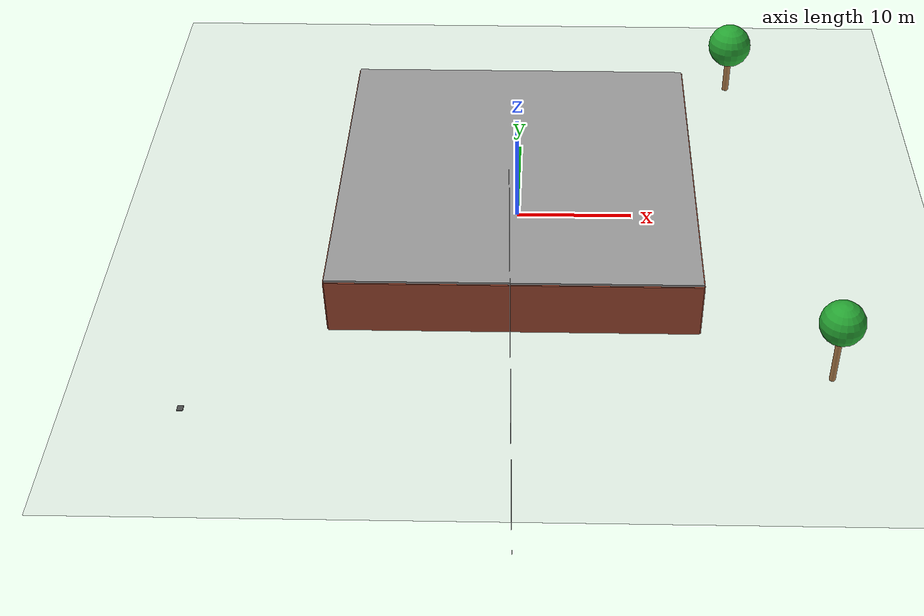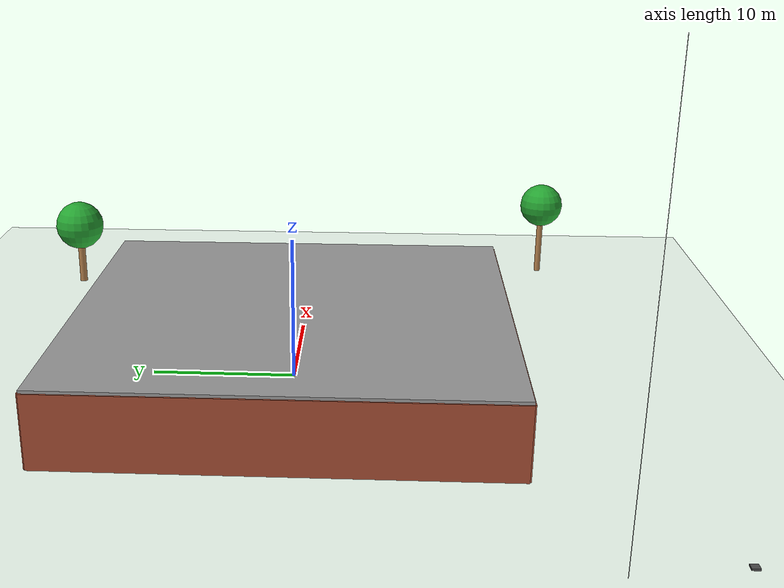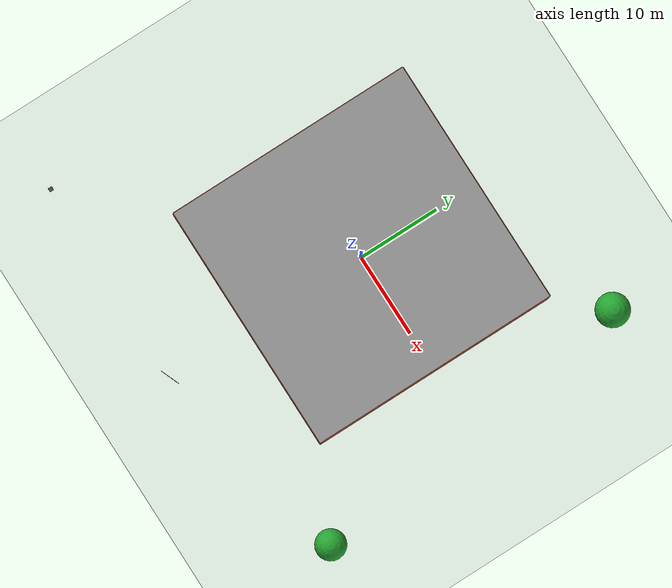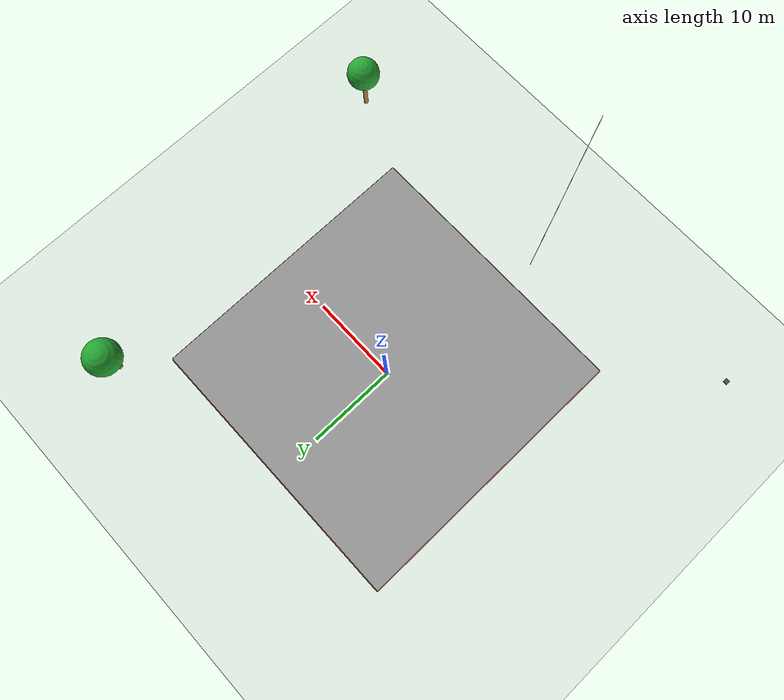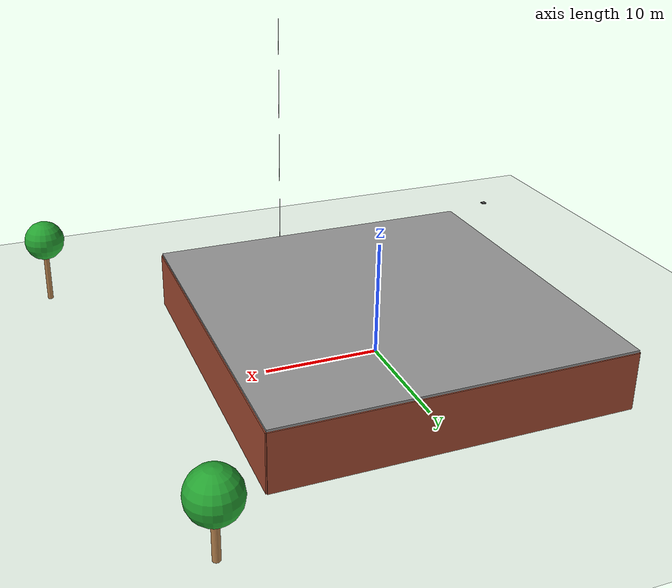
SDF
<?xml version="1.0" ?>
<sdf version="1.6">
  <world name="spatial_navigation_world">

    <!-- Physics settings optimized for drone simulation -->
    <physics name='default_physics' default='0' type='ode'>
      <ode>
        <solver>
          <type>quick</type>
          <iters>150</iters>
          <sor>1.3</sor>
        </solver>
        <constraints>
          <cfm>0.00001</cfm>
          <erp>0.2</erp>
          <contact_max_correcting_vel>1000</contact_max_correcting_vel>
          <contact_surface_layer>0.01</contact_surface_layer>
        </constraints>
      </ode>
      <max_step_size>0.004</max_step_size>
      <real_time_factor>1.0</real_time_factor>
      <real_time_update_rate>250</real_time_update_rate>
      <gravity>0 0 -9.81</gravity>
    </physics>

    <!-- Scene settings with realistic lighting -->
    <scene>
      <ambient>0.4 0.4 0.4 1</ambient>
      <background>0.7 0.7 1.0 1</background>
      <shadows>1</shadows>
    </scene>

    <!-- Sun for realistic lighting -->
    <include>
      <uri>model://sun</uri>
    </include>

    <!-- Ground plane -->
    <model name="ground_plane">
      <static>true</static>
      <link name="link">
        <collision name="collision">
          <geometry>
            <plane>
              <normal>0 0 1</normal>
              <size>200 200</size>
            </plane>
          </geometry>
        </collision>
        <visual name="visual">
          <geometry>
            <plane>
              <normal>0 0 1</normal>
              <size>200 200</size>
            </plane>
          </geometry>
          <material>
            <script>
              <uri>file://media/materials/scripts/gazebo.material</uri>
              <name>Gazebo/Grey</name>
            </script>
          </material>
        </visual>
      </link>
    </model>

    <!-- Warehouse Building for Indoor Navigation Testing -->
    <model name="warehouse">
      <pose>0 0 0 0 0 0</pose>
      <static>true</static>
      <link name="walls">
        <!-- Main structure walls -->
        <collision name="wall_front">
          <pose>0 -15 2.5 0 0 0</pose>
          <geometry>
            <box>
              <size>30 0.2 5</size>
            </box>
          </geometry>
        </collision>
        <visual name="wall_front_visual">
          <pose>0 -15 2.5 0 0 0</pose>
          <geometry>
            <box>
              <size>30 0.2 5</size>
            </box>
          </geometry>
          <material>
            <script>
              <uri>file://media/materials/scripts/gazebo.material</uri>
              <name>Gazebo/Bricks</name>
            </script>
          </material>
        </visual>

        <collision name="wall_back">
          <pose>0 15 2.5 0 0 0</pose>
          <geometry>
            <box>
              <size>30 0.2 5</size>
            </box>
          </geometry>
        </collision>
        <visual name="wall_back_visual">
          <pose>0 15 2.5 0 0 0</pose>
          <geometry>
            <box>
              <size>30 0.2 5</size>
            </box>
          </geometry>
          <material>
            <script>
              <uri>file://media/materials/scripts/gazebo.material</uri>
              <name>Gazebo/Bricks</name>
            </script>
          </material>
        </visual>

        <collision name="wall_left">
          <pose>-15 0 2.5 0 0 0</pose>
          <geometry>
            <box>
              <size>0.2 30 5</size>
            </box>
          </geometry>
        </collision>
        <visual name="wall_left_visual">
          <pose>-15 0 2.5 0 0 0</pose>
          <geometry>
            <box>
              <size>0.2 30 5</size>
            </box>
          </geometry>
          <material>
            <script>
              <uri>file://media/materials/scripts/gazebo.material</uri>
              <name>Gazebo/Bricks</name>
            </script>
          </material>
        </visual>

        <collision name="wall_right">
          <pose>15 0 2.5 0 0 0</pose>
          <geometry>
            <box>
              <size>0.2 30 5</size>
            </box>
          </geometry>
        </collision>
        <visual name="wall_right_visual">
          <pose>15 0 2.5 0 0 0</pose>
          <geometry>
            <box>
              <size>0.2 30 5</size>
            </box>
          </geometry>
          <material>
            <script>
              <uri>file://media/materials/scripts/gazebo.material</uri>
              <name>Gazebo/Bricks</name>
            </script>
          </material>
        </visual>

        <!-- Roof -->
        <collision name="roof">
          <pose>0 0 5.1 0 0 0</pose>
          <geometry>
            <box>
              <size>30 30 0.2</size>
            </box>
          </geometry>
        </collision>
        <visual name="roof_visual">
          <pose>0 0 5.1 0 0 0</pose>
          <geometry>
            <box>
              <size>30 30 0.2</size>
            </box>
          </geometry>
          <material>
            <script>
              <uri>file://media/materials/scripts/gazebo.material</uri>
              <name>Gazebo/Grey</name>
            </script>
          </material>
        </visual>
      </link>
    </model>

    <!-- Navigation Obstacles - Boxes and Pillars -->
    <!-- Box Obstacle 1 -->
    <model name="box_obstacle_1">
      <pose>-8 -5 0.5 0 0 0</pose>
      <static>true</static>
      <link name="link">
        <collision name="collision">
          <geometry>
            <box>
              <size>2 2 1</size>
            </box>
          </geometry>
        </collision>
        <visual name="visual">
          <geometry>
            <box>
              <size>2 2 1</size>
            </box>
          </geometry>
          <material>
            <script>
              <uri>file://media/materials/scripts/gazebo.material</uri>
              <name>Gazebo/Wood</name>
            </script>
          </material>
        </visual>
      </link>
    </model>

    <!-- Box Obstacle 2 -->
    <model name="box_obstacle_2">
      <pose>8 5 0.75 0 0 0</pose>
      <static>true</static>
      <link name="link">
        <collision name="collision">
          <geometry>
            <box>
              <size>1.5 1.5 1.5</size>
            </box>
          </geometry>
        </collision>
        <visual name="visual">
          <geometry>
            <box>
              <size>1.5 1.5 1.5</size>
            </box>
          </geometry>
          <material>
            <script>
              <uri>file://media/materials/scripts/gazebo.material</uri>
              <name>Gazebo/Red</name>
            </script>
          </material>
        </visual>
      </link>
    </model>

    <!-- Tall Pillar Obstacle -->
    <model name="pillar_obstacle">
      <pose>0 8 1.5 0 0 0</pose>
      <static>true</static>
      <link name="link">
        <collision name="collision">
          <geometry>
            <cylinder>
              <radius>0.5</radius>
              <length>3</length>
            </cylinder>
          </geometry>
        </collision>
        <visual name="visual">
          <geometry>
            <cylinder>
              <radius>0.5</radius>
              <length>3</length>
            </cylinder>
          </geometry>
          <material>
            <script>
              <uri>file://media/materials/scripts/gazebo.material</uri>
              <name>Gazebo/Blue</name>
            </script>
          </material>
        </visual>
      </link>
    </model>

    <!-- Corridor Obstacles for Navigation Testing -->
    <model name="corridor_wall_left">
      <pose>-3 0 1 0 0 1.57</pose>
      <static>true</static>
      <link name="link">
        <collision name="collision">
          <geometry>
            <box>
              <size>10 0.2 2</size>
            </box>
          </geometry>
        </collision>
        <visual name="visual">
          <geometry>
            <box>
              <size>10 0.2 2</size>
            </box>
          </geometry>
          <material>
            <script>
              <uri>file://media/materials/scripts/gazebo.material</uri>
              <name>Gazebo/Grey</name>
            </script>
          </material>
        </visual>
      </link>
    </model>

    <model name="corridor_wall_right">
      <pose>3 0 1 0 0 1.57</pose>
      <static>true</static>
      <link name="link">
        <collision name="collision">
          <geometry>
            <box>
              <size>10 0.2 2</size>
            </box>
          </geometry>
        </collision>
        <visual name="visual">
          <geometry>
            <box>
              <size>10 0.2 2</size>
            </box>
          </geometry>
          <material>
            <script>
              <uri>file://media/materials/scripts/gazebo.material</uri>
              <name>Gazebo/Grey</name>
            </script>
          </material>
        </visual>
      </link>
    </model>

    <!-- Trees for Outdoor Navigation -->
    <model name="tree_1">
      <pose>20 20 0 0 0 0</pose>
      <static>true</static>
      <link name="trunk">
        <collision name="trunk_collision">
          <pose>0 0 2 0 0 0</pose>
          <geometry>
            <cylinder>
              <radius>0.3</radius>
              <length>4</length>
            </cylinder>
          </geometry>
        </collision>
        <visual name="trunk_visual">
          <pose>0 0 2 0 0 0</pose>
          <geometry>
            <cylinder>
              <radius>0.3</radius>
              <length>4</length>
            </cylinder>
          </geometry>
          <material>
            <script>
              <uri>file://media/materials/scripts/gazebo.material</uri>
              <name>Gazebo/Wood</name>
            </script>
          </material>
        </visual>

        <collision name="canopy_collision">
          <pose>0 0 5 0 0 0</pose>
          <geometry>
            <sphere>
              <radius>2</radius>
            </sphere>
          </geometry>
        </collision>
        <visual name="canopy_visual">
          <pose>0 0 5 0 0 0</pose>
          <geometry>
            <sphere>
              <radius>2</radius>
            </sphere>
          </geometry>
          <material>
            <script>
              <uri>file://media/materials/scripts/gazebo.material</uri>
              <name>Gazebo/Green</name>
            </script>
          </material>
        </visual>
      </link>
    </model>

    <model name="tree_2">
      <pose>25 -20 0 0 0 0</pose>
      <static>true</static>
      <link name="trunk">
        <collision name="trunk_collision">
          <pose>0 0 2.5 0 0 0</pose>
          <geometry>
            <cylinder>
              <radius>0.25</radius>
              <length>5</length>
            </cylinder>
          </geometry>
        </collision>
        <visual name="trunk_visual">
          <pose>0 0 2.5 0 0 0</pose>
          <geometry>
            <cylinder>
              <radius>0.25</radius>
              <length>5</length>
            </cylinder>
          </geometry>
          <material>
            <script>
              <uri>file://media/materials/scripts/gazebo.material</uri>
              <name>Gazebo/Wood</name>
            </script>
          </material>
        </visual>

        <collision name="canopy_collision">
          <pose>0 0 6 0 0 0</pose>
          <geometry>
            <sphere>
              <radius>1.8</radius>
            </sphere>
          </geometry>
        </collision>
        <visual name="canopy_visual">
          <pose>0 0 6 0 0 0</pose>
          <geometry>
            <sphere>
              <radius>1.8</radius>
            </sphere>
          </geometry>
          <material>
            <script>
              <uri>file://media/materials/scripts/gazebo.material</uri>
              <name>Gazebo/Green</name>
            </script>
          </material>
        </visual>
      </link>
    </model>

    <!-- Power Line Simulation (Horizontal obstacle) -->
    <model name="power_line">
      <pose>0 -25 4 0 0 0</pose>
      <static>true</static>
      <link name="cable">
        <collision name="collision">
          <geometry>
            <cylinder>
              <radius>0.02</radius>
              <length>40</length>
            </cylinder>
          </geometry>
        </collision>
        <visual name="visual">
          <geometry>
            <cylinder>
              <radius>0.02</radius>
              <length>40</length>
            </cylinder>
          </geometry>
          <material>
            <script>
              <uri>file://media/materials/scripts/gazebo.material</uri>
              <name>Gazebo/Black</name>
            </script>
          </material>
        </visual>
      </link>
    </model>

    <!-- Spatial Reasoning Drone - positioned safely outside warehouse -->
    <include>
      <uri>model://spatial_reasoning_drone</uri>
      <name>spatial_reasoning_drone</name>
      <pose>-25 -25 1.0 0 0 0</pose>  <!-- Safe starting position: 25m away from warehouse center -->
    </include>

    <!-- Wind plugin for realistic flight conditions -->
    <plugin name="wind" filename="libgazebo_wind_plugin.so">
      <frameId>base_link</frameId>
      <robotNamespace></robotNamespace>
      <xyzOffset>0 0 0</xyzOffset>
      <windDirection>0 1 0</windDirection>
      <windVelocityMax>5</windVelocityMax>
      <windVelocityMin>0</windVelocityMin>
      <windDirectionVariance>15</windDirectionVariance>
    </plugin>

    <!-- GUI settings -->
    <gui fullscreen='0'>
      <camera name='user_camera'>
        <pose frame=''>-20 -20 15 0 0.5 0.7</pose>
        <view_controller>orbit</view_controller>
        <projection_type>perspective</projection_type>
      </camera>
    </gui>

  </world>
</sdf>

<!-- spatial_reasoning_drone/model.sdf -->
<sdf version="1.6">
  <model name="spatial_reasoning_drone">

    <!-- Main quadcopter body -->
    <link name="base_link">
      <pose>0 0 0 0 0 0</pose>
      <inertial>
        <mass>1.5</mass>
        <inertia>
          <ixx>0.0347563</ixx>
          <ixy>0</ixy>
          <ixz>0</ixz>
          <iyy>0.0458929</iyy>
          <iyz>0</iyz>
          <izz>0.0977</izz>
        </inertia>
      </inertial>

      <collision name="collision">
        <geometry>
          <box>
            <size>0.47 0.47 0.11</size>
          </box>
        </geometry>
      </collision>

      <visual name="visual">
        <geometry>
          <box>
            <size>0.47 0.47 0.11</size>
          </box>
        </geometry>
        <material>
          <script>
            <uri>file://media/materials/scripts/gazebo.material</uri>
            <name>Gazebo/DarkGrey</name>
          </script>
        </material>
      </visual>
    </link>

    <!-- Front Camera for Spatial Reasoning -->
    <link name="camera_link">
      <pose>0.2 0 0 0 0 0</pose>
      <inertial>
        <mass>0.1</mass>
        <inertia>
          <ixx>1e-6</ixx>
          <ixy>0</ixy>
          <ixz>0</ixz>
          <iyy>1e-6</iyy>
          <iyz>0</iyz>
          <izz>1e-6</izz>
        </inertia>
      </inertial>

      <collision name="collision">
        <geometry>
          <box>
            <size>0.05 0.05 0.05</size>
          </box>
        </geometry>
      </collision>

      <visual name="visual">
        <geometry>
          <box>
            <size>0.05 0.05 0.05</size>
          </box>
        </geometry>
        <material>
          <script>
            <uri>file://media/materials/scripts/gazebo.material</uri>
            <name>Gazebo/Red</name>
          </script>
        </material>
      </visual>

      <!-- RGB Camera Sensor -->
      <sensor type="camera" name="rgb_camera">
        <update_rate>30.0</update_rate>
        <camera name="head">
          <horizontal_fov>1.3962634</horizontal_fov>
          <image>
            <width>1920</width>
            <height>1080</height>
            <format>R8G8B8</format>
          </image>
          <clip>
            <near>0.02</near>
            <far>300</far>
          </clip>
          <noise>
            <type>gaussian</type>
            <mean>0.0</mean>
            <stddev>0.007</stddev>
          </noise>
        </camera>
        <plugin name="camera_controller" filename="libgazebo_ros_camera.so">
          <alwaysOn>true</alwaysOn>
          <updateRate>0.0</updateRate>
          <cameraName>drone/rgb_camera</cameraName>
          <imageTopicName>image_raw</imageTopicName>
          <cameraInfoTopicName>camera_info</cameraInfoTopicName>
          <frameName>camera_link</frameName>
          <hackBaseline>0.07</hackBaseline>
          <distortionK1>0.0</distortionK1>
          <distortionK2>0.0</distortionK2>
          <distortionK3>0.0</distortionK3>
          <distortionT1>0.0</distortionT1>
          <distortionT2>0.0</distortionT2>
        </plugin>
      </sensor>

      <!-- Depth Camera Sensor -->
      <sensor type="depth" name="depth_camera">
        <update_rate>20.0</update_rate>
        <camera name="depth">
          <horizontal_fov>1.3962634</horizontal_fov>
          <image>
            <width>640</width>
            <height>480</height>
            <format>R8G8B8</format>
          </image>
          <clip>
            <near>0.02</near>
            <far>300</far>
          </clip>
          <noise>
            <type>gaussian</type>
            <mean>0.0</mean>
            <stddev>0.007</stddev>
          </noise>
        </camera>
        <plugin name="depth_camera_controller" filename="libgazebo_ros_openni_kinect.so">
          <baseline>0.2</baseline>
          <alwaysOn>true</alwaysOn>
          <updateRate>0.0</updateRate>
          <cameraName>drone/depth_camera</cameraName>
          <imageTopicName>image_raw</imageTopicName>
          <cameraInfoTopicName>camera_info</cameraInfoTopicName>
          <depthImageTopicName>depth/image_raw</depthImageTopicName>
          <depthImageCameraInfoTopicName>depth/camera_info</depthImageCameraInfoTopicName>
          <pointCloudTopicName>depth/points</pointCloudTopicName>
          <frameName>camera_link</frameName>
          <pointCloudCutoff>0.5</pointCloudCutoff>
          <pointCloudCutoffMax>3.0</pointCloudCutoffMax>
          <distortionK1>0.00000001</distortionK1>
          <distortionK2>0.00000001</distortionK2>
          <distortionK3>0.00000001</distortionK3>
          <distortionT1>0.00000001</distortionT1>
          <distortionT2>0.00000001</distortionT2>
        </plugin>
      </sensor>
    </link>

    <!-- Down-facing Camera for Ground Distance -->
    <link name="down_camera_link">
      <pose>0 0 -0.1 0 1.57 0</pose>
      <inertial>
        <mass>0.05</mass>
        <inertia>
          <ixx>1e-6</ixx>
          <ixy>0</ixy>
          <ixz>0</ixz>
          <iyy>1e-6</iyy>
          <iyz>0</iyz>
          <izz>1e-6</izz>
        </inertia>
      </inertial>

      <collision name="collision">
        <geometry>
          <box>
            <size>0.03 0.03 0.03</size>
          </box>
        </geometry>
      </collision>

      <visual name="visual">
        <geometry>
          <box>
            <size>0.03 0.03 0.03</size>
          </box>
        </geometry>
        <material>
          <script>
            <uri>file://media/materials/scripts/gazebo.material</uri>
            <name>Gazebo/Blue</name>
          </script>
        </material>
      </visual>

      <sensor type="camera" name="down_camera">
        <update_rate>30.0</update_rate>
        <camera name="down">
          <horizontal_fov>1.3962634</horizontal_fov>
          <image>
            <width>640</width>
            <height>480</height>
            <format>R8G8B8</format>
          </image>
          <clip>
            <near>0.02</near>
            <far>300</far>
          </clip>
        </camera>
        <plugin name="down_camera_controller" filename="libgazebo_ros_camera.so">
          <alwaysOn>true</alwaysOn>
          <updateRate>0.0</updateRate>
          <cameraName>drone/down_camera</cameraName>
          <imageTopicName>image_raw</imageTopicName>
          <cameraInfoTopicName>camera_info</cameraInfoTopicName>
          <frameName>down_camera_link</frameName>
        </plugin>
      </sensor>
    </link>

    <!-- IMU Sensor -->
    <link name="imu_link">
      <pose>0 0 0 0 0 0</pose>
      <inertial>
        <mass>0.015</mass>
        <inertia>
          <ixx>1e-6</ixx>
          <ixy>0</ixy>
          <ixz>0</ixz>
          <iyy>1e-6</iyy>
          <iyz>0</iyz>
          <izz>1e-6</izz>
        </inertia>
      </inertial>

      <sensor name="imu_sensor" type="imu">
        <always_on>true</always_on>
        <update_rate>1000</update_rate>
        <visualize>true</visualize>
        <topic>/drone/imu</topic>
        <plugin filename="libgazebo_ros_imu_sensor.so" name="imu_plugin">
          <topicName>/drone/imu</topicName>
          <bodyName>imu_link</bodyName>
          <updateRateHZ>1000.0</updateRateHZ>
          <gaussianNoise>0.0</gaussianNoise>
          <xyzOffset>0 0 0</xyzOffset>
          <rpyOffset>0 0 0</rpyOffset>
          <frameName>imu_link</frameName>
        </plugin>
      </sensor>
    </link>

    <!-- GPS Sensor -->
    <link name="gps_link">
      <pose>0 0 0.1 0 0 0</pose>
      <inertial>
        <mass>0.01</mass>
        <inertia>
          <ixx>1e-6</ixx>
          <ixy>0</ixy>
          <ixz>0</ixz>
          <iyy>1e-6</iyy>
          <iyz>0</iyz>
          <izz>1e-6</izz>
        </inertia>
      </inertial>
    </link>

    <!-- Joints connecting sensors to main body -->
    <joint name="camera_joint" type="fixed">
      <child>camera_link</child>
      <parent>base_link</parent>
    </joint>

    <joint name="down_camera_joint" type="fixed">
      <child>down_camera_link</child>
      <parent>base_link</parent>
    </joint>

    <joint name="imu_joint" type="fixed">
      <child>imu_link</child>
      <parent>base_link</parent>
    </joint>

    <joint name="gps_joint" type="fixed">
      <child>gps_link</child>
      <parent>base_link</parent>
    </joint>

    <!-- Rotor plugins for ArduPilot integration -->
    <plugin name='rotor_0' filename='libgazebo_motor_model.so'>
      <robotNamespace></robotNamespace>
      <jointName>rotor_0_joint</jointName>
      <linkName>rotor_0</linkName>
      <turningDirection>ccw</turningDirection>
      <timeConstantUp>0.0125</timeConstantUp>
      <timeConstantDown>0.025</timeConstantDown>
      <maxRotVelocity>1100</maxRotVelocity>
      <motorConstant>8.54858e-06</motorConstant>
      <momentConstant>0.06</momentConstant>
      <commandSubTopic>/gazebo/command/motor_speed</commandSubTopic>
      <motorNumber>0</motorNumber>
      <rotorDragCoefficient>0.000806428</rotorDragCoefficient>
      <rollingMomentCoefficient>1e-06</rollingMomentCoefficient>
      <motorSpeedPubTopic>/motor_speed/0</motorSpeedPubTopic>
      <rotorVelocitySlowdownSim>10</rotorVelocitySlowdownSim>
    </plugin>

    <!-- ArduPilot SITL Plugin -->
    <plugin name='arducopter_plugin' filename='libArduPilotPlugin.so'>
      <fdm_addr>127.0.0.1</fdm_addr>
      <fdm_port_in>9002</fdm_port_in>
      <fdm_port_out>9003</fdm_port_out>
      <modelXYZToAirplaneXForwardZDown>0 0 0 3.141593 0 0</modelXYZToAirplaneXForwardZDown>
      <gazeboXYZToNED>0 0 0 3.141593 0 0</gazeboXYZToNED>
      <imuName>imu_link</imuName>
      <connectionTimeoutMaxCount>5</connectionTimeoutMaxCount>
      <control channel="0">
        <jointName>rotor_0_joint</jointName>
        <useForce>1</useForce>
        <multiplier>1000</multiplier>
        <offset>-0.2</offset>
      </control>
    </plugin>

  </model>
</sdf>
